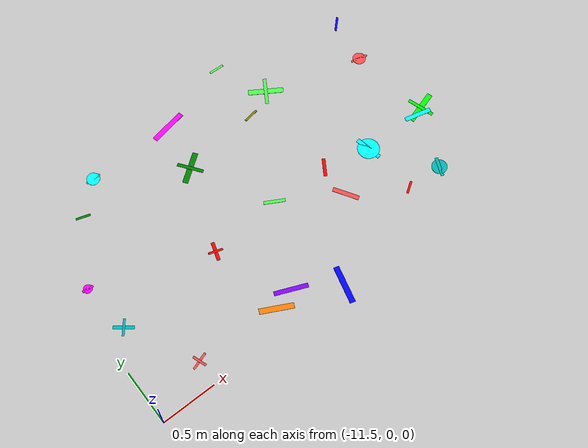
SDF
<sdf version="1.6">
 <world name="default">
  <model name="letter_F_358">
   <static>true</static>
   <pose>-10.98 0.23 0.006 0 0 3.476</pose>
   <link name="link">
    <visual name="visual">
     <geometry><box><size>0.16 0.02 0.002</size></box></geometry>
     <material>
      <ambient>1.0 0.3 0.3 1</ambient>
      <diffuse>1.0 0.3 0.3 1</diffuse>
      <specular>0.1 0.1 0.1 1</specular>
     </material>
    </visual>
    <visual name="visual2">
     <pose>0 0 0.001 0 0 1.57</pose>
     <geometry><box><size>0.13 0.02 0.001</size></box></geometry>
     <material><ambient>1.0 0.3 0.3 1</ambient><diffuse>1.0 0.3 0.3 1</diffuse></material>
    </visual>
   </link>
  </model>
  <model name="letter_Q_360">
   <static>true</static>
   <pose>-11.36 1.30 0.006 0 0 6.208</pose>
   <link name="link">
    <visual name="visual">
     <geometry><box><size>0.10 0.02 0.002</size></box></geometry>
     <material>
      <ambient>1.0 0.0 1.0 1</ambient>
      <diffuse>1.0 0.0 1.0 1</diffuse>
      <specular>0.1 0.1 0.1 1</specular>
     </material>
    </visual>
    <visual name="visual2">
     <geometry><cylinder><radius>0.04</radius><length>0.002</length></cylinder></geometry>
     <material><ambient>1.0 0.0 1.0 1</ambient><diffuse>1.0 0.0 1.0 1</diffuse></material>
    </visual>
   </link>
  </model>
  <model name="letter_E_361">
   <static>true</static>
   <pose>-11.31 0.84 0.009 0 0 5.613</pose>
   <link name="link">
    <visual name="visual">
     <geometry><box><size>0.18 0.03 0.002</size></box></geometry>
     <material>
      <ambient>0.0 0.7 0.7 1</ambient>
      <diffuse>0.0 0.7 0.7 1</diffuse>
      <specular>0.1 0.1 0.1 1</specular>
     </material>
    </visual>
    <visual name="visual2">
     <pose>0 0 0.001 0 0 1.57</pose>
     <geometry><box><size>0.15 0.02 0.001</size></box></geometry>
     <material><ambient>0.0 0.7 0.7 1</ambient><diffuse>0.0 0.7 0.7 1</diffuse></material>
    </visual>
   </link>
  </model>
  <model name="letter_Q_362">
   <static>true</static>
   <pose>-10.76 2.12 0.008 0 0 3.183</pose>
   <link name="link">
    <visual name="visual">
     <geometry><box><size>0.14 0.02 0.002</size></box></geometry>
     <material>
      <ambient>0.0 1.0 1.0 1</ambient>
      <diffuse>0.0 1.0 1.0 1</diffuse>
      <specular>0.1 0.1 0.1 1</specular>
     </material>
    </visual>
    <visual name="visual2">
     <geometry><cylinder><radius>0.06</radius><length>0.002</length></cylinder></geometry>
     <material><ambient>0.0 1.0 1.0 1</ambient><diffuse>0.0 1.0 1.0 1</diffuse></material>
    </visual>
   </link>
  </model>
  <model name="letter_U_363">
   <static>true</static>
   <pose>-11.03 1.87 0.008 0 0 2.850</pose>
   <link name="link">
    <visual name="visual">
     <geometry><box><size>0.13 0.02 0.002</size></box></geometry>
     <material>
      <ambient>0.0 0.5 0.0 1</ambient>
      <diffuse>0.0 0.5 0.0 1</diffuse>
      <specular>0.1 0.1 0.1 1</specular>
     </material>
    </visual>
   </link>
  </model>
  <model name="letter_S_436">
   <static>true</static>
   <pose>-10.21 0.20 0.013 0 0 2.676</pose>
   <link name="link">
    <visual name="visual">
     <geometry><box><size>0.30 0.05 0.002</size></box></geometry>
     <material>
      <ambient>1.0 0.5 0.0 1</ambient>
      <diffuse>1.0 0.5 0.0 1</diffuse>
      <specular>0.1 0.1 0.1 1</specular>
     </material>
    </visual>
   </link>
  </model>
  <model name="letter_K_437">
   <static>true</static>
   <pose>-10.01 0.26 0.005 0 0 5.897</pose>
   <link name="link">
    <visual name="visual">
     <geometry><box><size>0.30 0.04 0.002</size></box></geometry>
     <material>
      <ambient>0.5 0.0 1.0 1</ambient>
      <diffuse>0.5 0.0 1.0 1</diffuse>
      <specular>0.1 0.1 0.1 1</specular>
     </material>
    </visual>
   </link>
  </model>
  <model name="letter_N_438">
   <static>true</static>
   <pose>-9.63 0.02 0.011 0 0 1.316</pose>
   <link name="link">
    <visual name="visual">
     <geometry><box><size>0.34 0.05 0.002</size></box></geometry>
     <material>
      <ambient>0.0 0.0 1.0 1</ambient>
      <diffuse>0.0 0.0 1.0 1</diffuse>
      <specular>0.1 0.1 0.1 1</specular>
     </material>
    </visual>
   </link>
  </model>
  <model name="letter_L_439">
   <static>true</static>
   <pose>-10.31 0.92 0.004 0 0 4.399</pose>
   <link name="link">
    <visual name="visual">
     <geometry><box><size>0.17 0.03 0.002</size></box></geometry>
     <material>
      <ambient>1.0 0.0 0.0 1</ambient>
      <diffuse>1.0 0.0 0.0 1</diffuse>
      <specular>0.1 0.1 0.1 1</specular>
     </material>
    </visual>
    <visual name="visual2">
     <pose>0 0 0.001 0 0 1.57</pose>
     <geometry><box><size>0.13 0.02 0.001</size></box></geometry>
     <material><ambient>1.0 0.0 0.0 1</ambient><diffuse>1.0 0.0 0.0 1</diffuse></material>
    </visual>
   </link>
  </model>
  <model name="letter_B_440">
   <static>true</static>
   <pose>-9.63 0.98 0.011 0 0 5.786</pose>
   <link name="link">
    <visual name="visual">
     <geometry><box><size>0.19 0.03 0.002</size></box></geometry>
     <material>
      <ambient>0.3 1.0 0.3 1</ambient>
      <diffuse>0.3 1.0 0.3 1</diffuse>
      <specular>0.1 0.1 0.1 1</specular>
     </material>
    </visual>
   </link>
  </model>
  <model name="letter_T_441">
   <static>true</static>
   <pose>-10.02 1.69 0.004 0 0 3.780</pose>
   <link name="link">
    <visual name="visual">
     <geometry><box><size>0.30 0.05 0.002</size></box></geometry>
     <material>
      <ambient>0.0 0.5 0.0 1</ambient>
      <diffuse>0.0 0.5 0.0 1</diffuse>
      <specular>0.1 0.1 0.1 1</specular>
     </material>
    </visual>
    <visual name="visual2">
     <pose>0 0 0.001 0 0 1.57</pose>
     <geometry><box><size>0.24 0.03 0.001</size></box></geometry>
     <material><ambient>0.0 0.5 0.0 1</ambient><diffuse>0.0 0.5 0.0 1</diffuse></material>
    </visual>
   </link>
  </model>
  <model name="letter_J_442">
   <static>true</static>
   <pose>-9.94 2.14 0.011 0 0 3.348</pose>
   <link name="link">
    <visual name="visual">
     <geometry><box><size>0.34 0.05 0.002</size></box></geometry>
     <material>
      <ambient>1.0 0.0 1.0 1</ambient>
      <diffuse>1.0 0.0 1.0 1</diffuse>
      <specular>0.1 0.1 0.1 1</specular>
     </material>
    </visual>
   </link>
  </model>
  <model name="letter_W_513">
   <static>true</static>
   <pose>-8.61 0.37 0.010 0 0 3.726</pose>
   <link name="link">
    <visual name="visual">
     <geometry><box><size>0.12 0.02 0.002</size></box></geometry>
     <material>
      <ambient>1.0 0.0 0.0 1</ambient>
      <diffuse>1.0 0.0 0.0 1</diffuse>
      <specular>0.1 0.1 0.1 1</specular>
     </material>
    </visual>
   </link>
  </model>
  <model name="letter_G_516">
   <static>true</static>
   <pose>-8.65 0.88 0.005 0 0 1.758</pose>
   <link name="link">
    <visual name="visual">
     <geometry><box><size>0.25 0.04 0.002</size></box></geometry>
     <material>
      <ambient>0.0 1.0 1.0 1</ambient>
      <diffuse>0.0 1.0 1.0 1</diffuse>
      <specular>0.1 0.1 0.1 1</specular>
     </material>
    </visual>
    <visual name="visual2">
     <geometry><cylinder><radius>0.10</radius><length>0.002</length></cylinder></geometry>
     <material><ambient>0.0 1.0 1.0 1</ambient><diffuse>0.0 1.0 1.0 1</diffuse></material>
    </visual>
   </link>
  </model>
  <model name="letter_M_517">
   <static>true</static>
   <pose>-9.09 0.66 0.012 0 0 2.127</pose>
   <link name="link">
    <visual name="visual">
     <geometry><box><size>0.24 0.04 0.002</size></box></geometry>
     <material>
      <ambient>1.0 0.3 0.3 1</ambient>
      <diffuse>1.0 0.3 0.3 1</diffuse>
      <specular>0.1 0.1 0.1 1</specular>
     </material>
    </visual>
   </link>
  </model>
  <model name="letter_Z_518">
   <static>true</static>
   <pose>-9.08 0.97 0.012 0 0 1.001</pose>
   <link name="link">
    <visual name="visual">
     <geometry><box><size>0.17 0.03 0.002</size></box></geometry>
     <material>
      <ambient>1.0 0.0 0.0 1</ambient>
      <diffuse>1.0 0.0 0.0 1</diffuse>
      <specular>0.1 0.1 0.1 1</specular>
     </material>
    </visual>
   </link>
  </model>
  <model name="letter_S_519">
   <static>true</static>
   <pose>-9.28 1.78 0.007 0 0 0.169</pose>
   <link name="link">
    <visual name="visual">
     <geometry><box><size>0.14 0.02 0.002</size></box></geometry>
     <material>
      <ambient>0.5 0.5 0.0 1</ambient>
      <diffuse>0.5 0.5 0.0 1</diffuse>
      <specular>0.1 0.1 0.1 1</specular>
     </material>
    </visual>
   </link>
  </model>
  <model name="letter_U_520">
   <static>true</static>
   <pose>-9.24 2.36 0.008 0 0 3.115</pose>
   <link name="link">
    <visual name="visual">
     <geometry><box><size>0.14 0.02 0.002</size></box></geometry>
     <material>
      <ambient>0.3 1.0 0.3 1</ambient>
      <diffuse>0.3 1.0 0.3 1</diffuse>
      <specular>0.1 0.1 0.1 1</specular>
     </material>
    </visual>
   </link>
  </model>
  <model name="letter_A_521">
   <static>true</static>
   <pose>-9.02 1.90 0.004 0 0 5.728</pose>
   <link name="link">
    <visual name="visual">
     <geometry><box><size>0.32 0.05 0.002</size></box></geometry>
     <material>
      <ambient>0.3 1.0 0.3 1</ambient>
      <diffuse>0.3 1.0 0.3 1</diffuse>
      <specular>0.1 0.1 0.1 1</specular>
     </material>
    </visual>
    <visual name="visual2">
     <pose>0 0 0.001 0 0 1.57</pose>
     <geometry><box><size>0.26 0.03 0.001</size></box></geometry>
     <material><ambient>0.3 1.0 0.3 1</ambient><diffuse>0.3 1.0 0.3 1</diffuse></material>
    </visual>
   </link>
  </model>
  <model name="letter_C_598">
   <static>true</static>
   <pose>-8.27 0.36 0.011 0 0 4.316</pose>
   <link name="link">
    <visual name="visual">
     <geometry><box><size>0.18 0.03 0.002</size></box></geometry>
     <material>
      <ambient>0.0 0.7 0.7 1</ambient>
      <diffuse>0.0 0.7 0.7 1</diffuse>
      <specular>0.1 0.1 0.1 1</specular>
     </material>
    </visual>
    <visual name="visual2">
     <geometry><cylinder><radius>0.07</radius><length>0.002</length></cylinder></geometry>
     <material><ambient>0.0 0.7 0.7 1</ambient><diffuse>0.0 0.7 0.7 1</diffuse></material>
    </visual>
   </link>
  </model>
  <model name="letter_T_599">
   <static>true</static>
   <pose>-8.01 0.91 0.010 0 0 3.448</pose>
   <link name="link">
    <visual name="visual">
     <geometry><box><size>0.32 0.05 0.002</size></box></geometry>
     <material>
      <ambient>0.0 1.0 0.0 1</ambient>
      <diffuse>0.0 1.0 0.0 1</diffuse>
      <specular>0.1 0.1 0.1 1</specular>
     </material>
    </visual>
    <visual name="visual2">
     <pose>0 0 0.001 0 0 1.57</pose>
     <geometry><box><size>0.25 0.03 0.001</size></box></geometry>
     <material><ambient>0.0 1.0 0.0 1</ambient><diffuse>0.0 1.0 0.0 1</diffuse></material>
    </visual>
   </link>
  </model>
  <model name="letter_P_600">
   <static>true</static>
   <pose>-8.08 0.87 0.012 0 0 6.055</pose>
   <link name="link">
    <visual name="visual">
     <geometry><box><size>0.25 0.04 0.002</size></box></geometry>
     <material>
      <ambient>0.0 1.0 1.0 1</ambient>
      <diffuse>0.0 1.0 1.0 1</diffuse>
      <specular>0.1 0.1 0.1 1</specular>
     </material>
    </visual>
   </link>
  </model>
  <model name="letter_O_601">
   <static>true</static>
   <pose>-8.12 1.65 0.003 0 0 6.093</pose>
   <link name="link">
    <visual name="visual">
     <geometry><box><size>0.16 0.02 0.002</size></box></geometry>
     <material>
      <ambient>1.0 0.3 0.3 1</ambient>
      <diffuse>1.0 0.3 0.3 1</diffuse>
      <specular>0.1 0.1 0.1 1</specular>
     </material>
    </visual>
    <visual name="visual2">
     <geometry><cylinder><radius>0.06</radius><length>0.002</length></cylinder></geometry>
     <material><ambient>1.0 0.3 0.3 1</ambient><diffuse>1.0 0.3 0.3 1</diffuse></material>
    </visual>
   </link>
  </model>
  <model name="letter_U_603">
   <static>true</static>
   <pose>-8.05 2.07 0.004 0 0 0.780</pose>
   <link name="link">
    <visual name="visual">
     <geometry><box><size>0.15 0.02 0.002</size></box></geometry>
     <material>
      <ambient>0.0 0.0 1.0 1</ambient>
      <diffuse>0.0 0.0 1.0 1</diffuse>
      <specular>0.1 0.1 0.1 1</specular>
     </material>
    </visual>
   </link>
  </model>
 </world>
</sdf>
